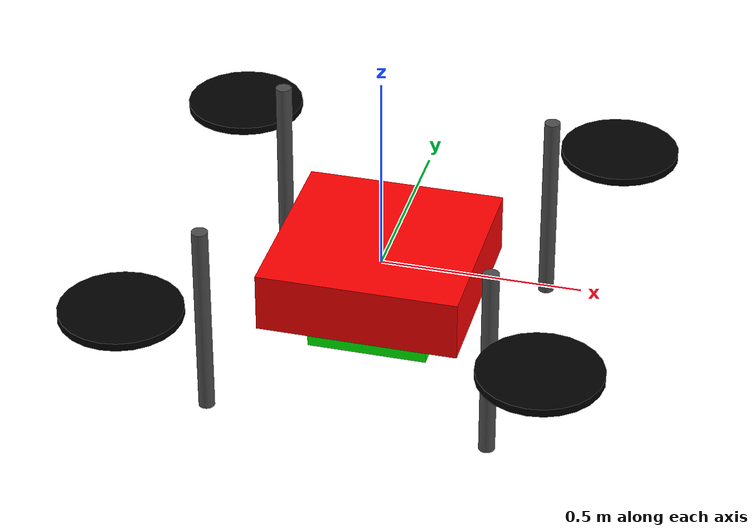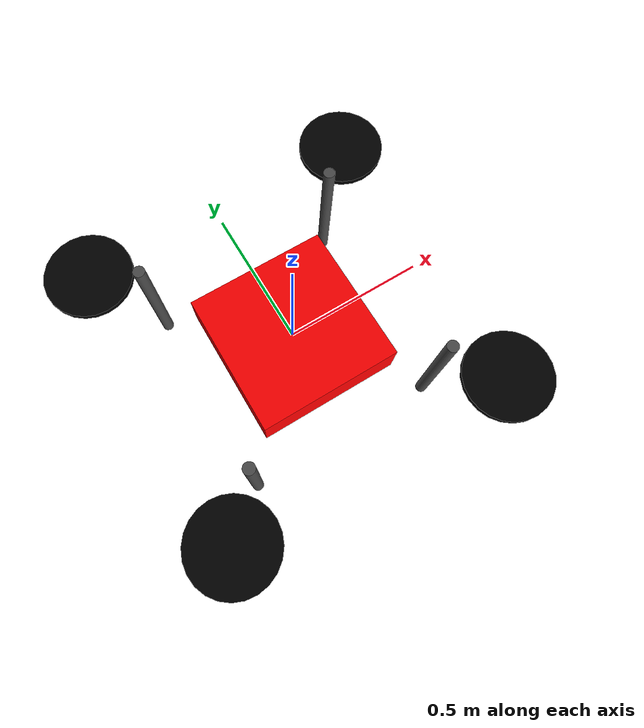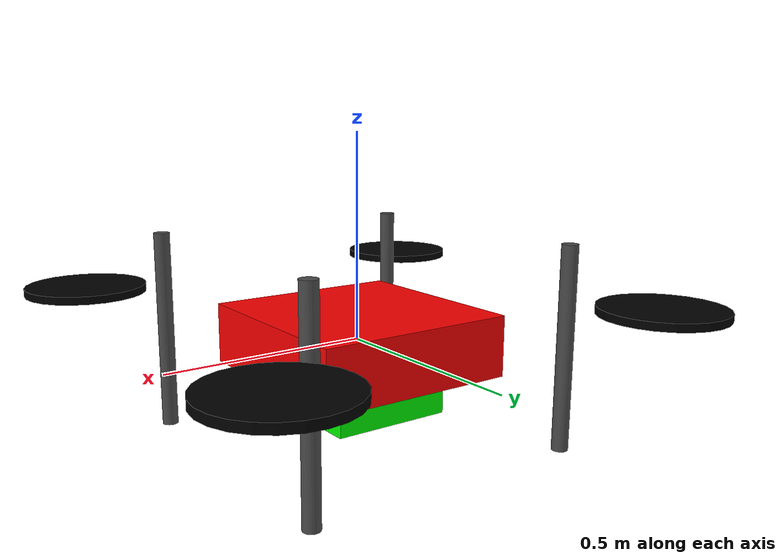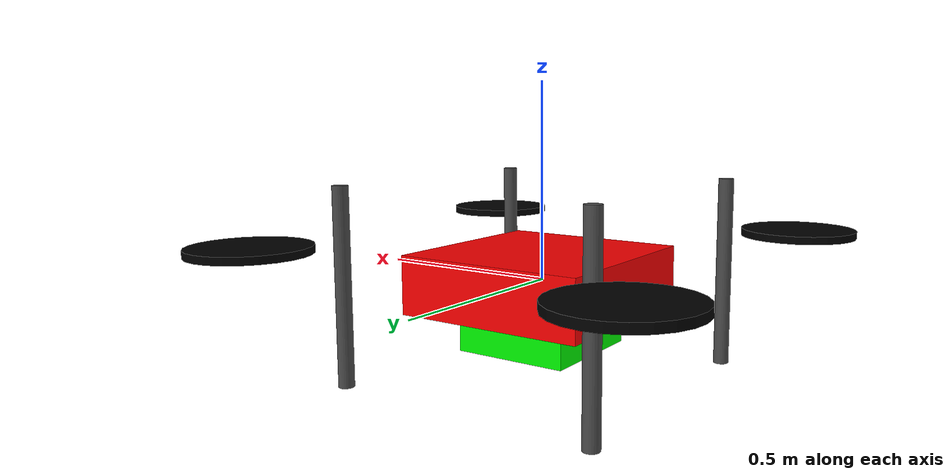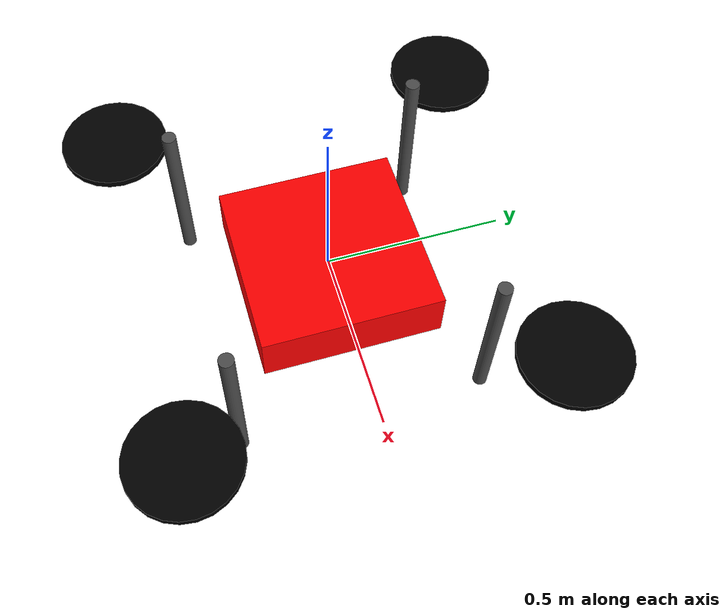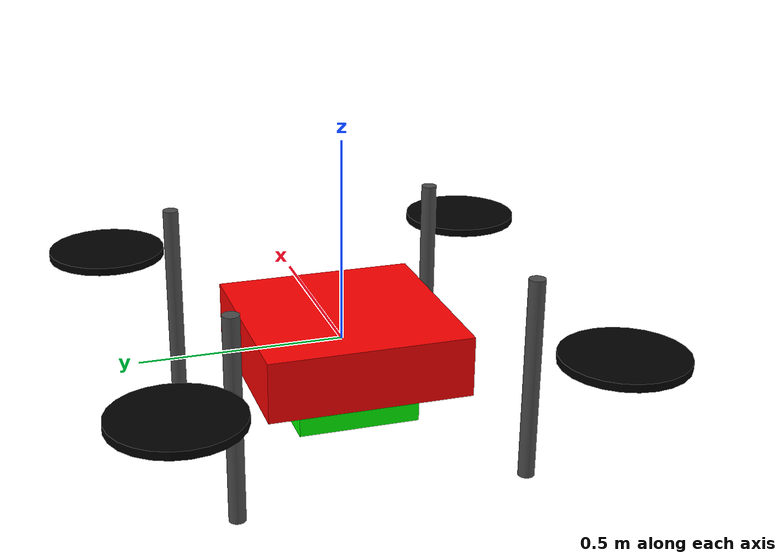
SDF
<?xml version="1.0" encoding="UTF-8"?>
<sdf version="1.9">
  <model name="collection_drone">
    <static>false</static>

    <!-- Base Link -->
    <link name="base_link">
      <pose>0 0 0 0 0 0</pose>
      <inertial>
        <mass>5.0</mass>
        <inertia>
          <ixx>0.01</ixx>
          <iyy>0.01</iyy>
          <izz>0.02</izz>
        </inertia>
      </inertial>
      <collision name="collision">
        <geometry>
          <box>
            <size>0.5 0.5 0.15</size>
          </box>
        </geometry>
      </collision>
      <visual name="visual">
        <geometry>
          <box>
            <size>0.5 0.5 0.15</size>
          </box>
        </geometry>
        <material>
          <ambient>1 0 0 1</ambient>
          <diffuse>1 0 0 1</diffuse>
        </material>
      </visual>
    </link>

    <!-- Arms -->
    <link name="arm_fl">
      <pose>0.35 0.35 0 0 0 0.785</pose>
      <inertial>
        <mass>0.2</mass>
        <inertia>
          <ixx>0.001</ixx>
          <iyy>0.001</iyy>
          <izz>0.001</izz>
        </inertia>
      </inertial>
      <collision name="collision">
        <geometry>
          <cylinder>
            <radius>0.02</radius>
            <length>0.5</length>
          </cylinder>
        </geometry>
      </collision>
      <visual name="visual">
        <geometry>
          <cylinder>
            <radius>0.02</radius>
            <length>0.5</length>
          </cylinder>
        </geometry>
        <material>
          <ambient>0.3 0.3 0.3 1</ambient>
        </material>
      </visual>
    </link>

    <link name="arm_fr">
      <pose>0.35 -0.35 0 0 0 -0.785</pose>
      <inertial>
        <mass>0.2</mass>
        <inertia>
          <ixx>0.001</ixx>
          <iyy>0.001</iyy>
          <izz>0.001</izz>
        </inertia>
      </inertial>
      <collision name="collision">
        <geometry>
          <cylinder>
            <radius>0.02</radius>
            <length>0.5</length>
          </cylinder>
        </geometry>
      </collision>
      <visual name="visual">
        <geometry>
          <cylinder>
            <radius>0.02</radius>
            <length>0.5</length>
          </cylinder>
        </geometry>
        <material>
          <ambient>0.3 0.3 0.3 1</ambient>
        </material>
      </visual>
    </link>

    <link name="arm_rl">
      <pose>-0.35 0.35 0 0 0 -0.785</pose>
      <inertial>
        <mass>0.2</mass>
        <inertia>
          <ixx>0.001</ixx>
          <iyy>0.001</iyy>
          <izz>0.001</izz>
        </inertia>
      </inertial>
      <collision name="collision">
        <geometry>
          <cylinder>
            <radius>0.02</radius>
            <length>0.5</length>
          </cylinder>
        </geometry>
      </collision>
      <visual name="visual">
        <geometry>
          <cylinder>
            <radius>0.02</radius>
            <length>0.5</length>
          </cylinder>
        </geometry>
        <material>
          <ambient>0.3 0.3 0.3 1</ambient>
        </material>
      </visual>
    </link>

    <link name="arm_rr">
      <pose>-0.35 -0.35 0 0 0 0.785</pose>
      <inertial>
        <mass>0.2</mass>
        <inertia>
          <ixx>0.001</ixx>
          <iyy>0.001</iyy>
          <izz>0.001</izz>
        </inertia>
      </inertial>
      <collision name="collision">
        <geometry>
          <cylinder>
            <radius>0.02</radius>
            <length>0.5</length>
          </cylinder>
        </geometry>
      </collision>
      <visual name="visual">
        <geometry>
          <cylinder>
            <radius>0.02</radius>
            <length>0.5</length>
          </cylinder>
        </geometry>
        <material>
          <ambient>0.3 0.3 0.3 1</ambient>
        </material>
      </visual>
    </link>

    <!-- Rotors -->
    <link name="rotor_fl">
      <pose>0.5 0.5 0.1 0 0 0</pose>
      <inertial>
        <mass>0.1</mass>
        <inertia>
          <ixx>0.001</ixx>
          <iyy>0.001</iyy>
          <izz>0.001</izz>
        </inertia>
      </inertial>
      <collision name="collision">
        <geometry>
          <cylinder>
            <radius>0.15</radius>
            <length>0.02</length>
          </cylinder>
        </geometry>
      </collision>
      <visual name="visual">
        <geometry>
          <cylinder>
            <radius>0.15</radius>
            <length>0.02</length>
          </cylinder>
        </geometry>
        <material>
          <ambient>0 0 0 1</ambient>
        </material>
      </visual>
    </link>

    <link name="rotor_fr">
      <pose>0.5 -0.5 0.1 0 0 0</pose>
      <inertial>
        <mass>0.1</mass>
        <inertia>
          <ixx>0.001</ixx>
          <iyy>0.001</iyy>
          <izz>0.001</izz>
        </inertia>
      </inertial>
      <collision name="collision">
        <geometry>
          <cylinder>
            <radius>0.15</radius>
            <length>0.02</length>
          </cylinder>
        </geometry>
      </collision>
      <visual name="visual">
        <geometry>
          <cylinder>
            <radius>0.15</radius>
            <length>0.02</length>
          </cylinder>
        </geometry>
        <material>
          <ambient>0 0 0 1</ambient>
        </material>
      </visual>
    </link>

    <link name="rotor_rl">
      <pose>-0.5 0.5 0.1 0 0 0</pose>
      <inertial>
        <mass>0.1</mass>
        <inertia>
          <ixx>0.001</ixx>
          <iyy>0.001</iyy>
          <izz>0.001</izz>
        </inertia>
      </inertial>
      <collision name="collision">
        <geometry>
          <cylinder>
            <radius>0.15</radius>
            <length>0.02</length>
          </cylinder>
        </geometry>
      </collision>
      <visual name="visual">
        <geometry>
          <cylinder>
            <radius>0.15</radius>
            <length>0.02</length>
          </cylinder>
        </geometry>
        <material>
          <ambient>0 0 0 1</ambient>
        </material>
      </visual>
    </link>

    <link name="rotor_rr">
      <pose>-0.5 -0.5 0.1 0 0 0</pose>
      <inertial>
        <mass>0.1</mass>
        <inertia>
          <ixx>0.001</ixx>
          <iyy>0.001</iyy>
          <izz>0.001</izz>
        </inertia>
      </inertial>
      <collision name="collision">
        <geometry>
          <cylinder>
            <radius>0.15</radius>
            <length>0.02</length>
          </cylinder>
        </geometry>
      </collision>
      <visual name="visual">
        <geometry>
          <cylinder>
            <radius>0.15</radius>
            <length>0.02</length>
          </cylinder>
        </geometry>
        <material>
          <ambient>0 0 0 1</ambient>
        </material>
      </visual>
    </link>

    <!-- Cargo Bay -->
    <link name="cargo_bay">
      <pose>0 0 -0.1 0 0 0</pose>
      <inertial>
        <mass>1.0</mass>
        <inertia>
          <ixx>0.01</ixx>
          <iyy>0.01</iyy>
          <izz>0.01</izz>
        </inertia>
      </inertial>
      <collision name="collision">
        <geometry>
          <box>
            <size>0.3 0.3 0.15</size>
          </box>
        </geometry>
      </collision>
      <visual name="visual">
        <geometry>
          <box>
            <size>0.3 0.3 0.15</size>
          </box>
        </geometry>
        <material>
          <ambient>0 1 0 1</ambient>
        </material>
      </visual>
    </link>

    <!-- Joints: Arms to base -->
    <joint name="arm_fl_joint" type="fixed">
      <parent>base_link</parent>
      <child>arm_fl</child>
    </joint>
    <joint name="arm_fr_joint" type="fixed">
      <parent>base_link</parent>
      <child>arm_fr</child>
    </joint>
    <joint name="arm_rl_joint" type="fixed">
      <parent>base_link</parent>
      <child>arm_rl</child>
    </joint>
    <joint name="arm_rr_joint" type="fixed">
      <parent>base_link</parent>
      <child>arm_rr</child>
    </joint>

    <!-- Joints: Rotors to arms -->
    <joint name="rotor_fl_joint" type="revolute">
      <parent>arm_fl</parent>
      <child>rotor_fl</child>
      <axis>
        <xyz>0 0 1</xyz>
        <limit>
          <lower>-1e16</lower>
          <upper>1e16</upper>
        </limit>
      </axis>
    </joint>
    <joint name="rotor_fr_joint" type="revolute">
      <parent>arm_fr</parent>
      <child>rotor_fr</child>
      <axis>
        <xyz>0 0 1</xyz>
        <limit>
          <lower>-1e16</lower>
          <upper>1e16</upper>
        </limit>
      </axis>
    </joint>
    <joint name="rotor_rl_joint" type="revolute">
      <parent>arm_rl</parent>
      <child>rotor_rl</child>
      <axis>
        <xyz>0 0 1</xyz>
        <limit>
          <lower>-1e16</lower>
          <upper>1e16</upper>
        </limit>
      </axis>
    </joint>
    <joint name="rotor_rr_joint" type="revolute">
      <parent>arm_rr</parent>
      <child>rotor_rr</child>
      <axis>
        <xyz>0 0 1</xyz>
        <limit>
          <lower>-1e16</lower>
          <upper>1e16</upper>
        </limit>
      </axis>
    </joint>

    <!-- Joint: Cargo bay -->
    <joint name="cargo_joint" type="fixed">
      <parent>base_link</parent>
      <child>cargo_bay</child>
    </joint>

    <!-- ROS2 Control Plugin for Multirotor -->
    <plugin name="gazebo_ros_multirotor" filename="libgazebo_ros_multirotor.so">
      <ros>
        <namespace>/drone</namespace>
      </ros>
      <update_rate>20</update_rate>

      <!-- Motors -->
      <link name="rotor_fl"/>
      <link name="rotor_fr"/>
      <link name="rotor_rl"/>
      <link name="rotor_rr"/>

      <!-- Control parameters -->
      <motor_speed>1000</motor_speed>
      <max_thrust>60</max_thrust>

      <!-- Topics -->
      <cmd_motor_velocity_topic>/drone/motor_velocity</cmd_motor_velocity_topic>
      <imu_topic>/drone/imu</imu_topic>

      <!-- Vehicle configuration -->
      <vehicle>quadrotor</vehicle>
      <mass>5.0</mass>
      <gravity>9.81</gravity>
    </plugin>

    <!-- GPS Plugin -->
    <plugin name="gazebo_ros_gps" filename="libgazebo_ros_gps.so">
      <ros>
        <namespace>/drone</namespace>
      </ros>
      <update_rate>10</update_rate>
      <gps_noise>true</gps_noise>
      <position_topic>/drone/gps</position_topic>
      <velocity_topic>/drone/gps/vel</velocity_topic>
    </plugin>
  </model>
</sdf>
